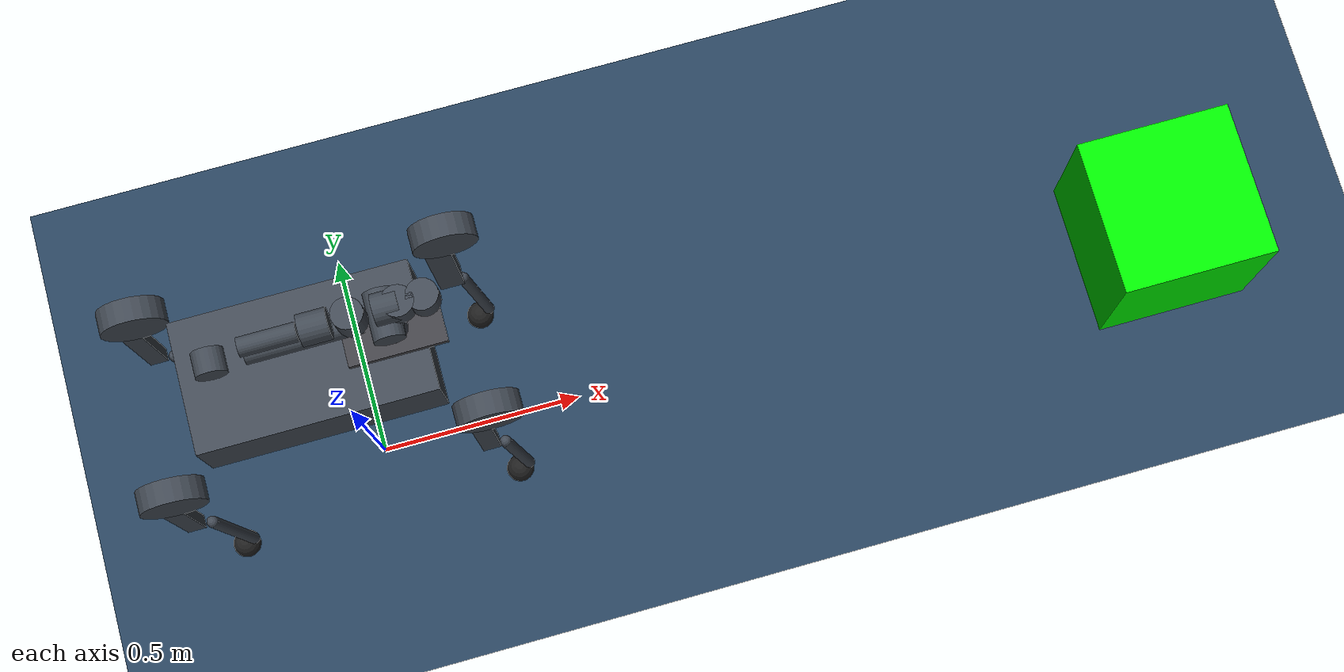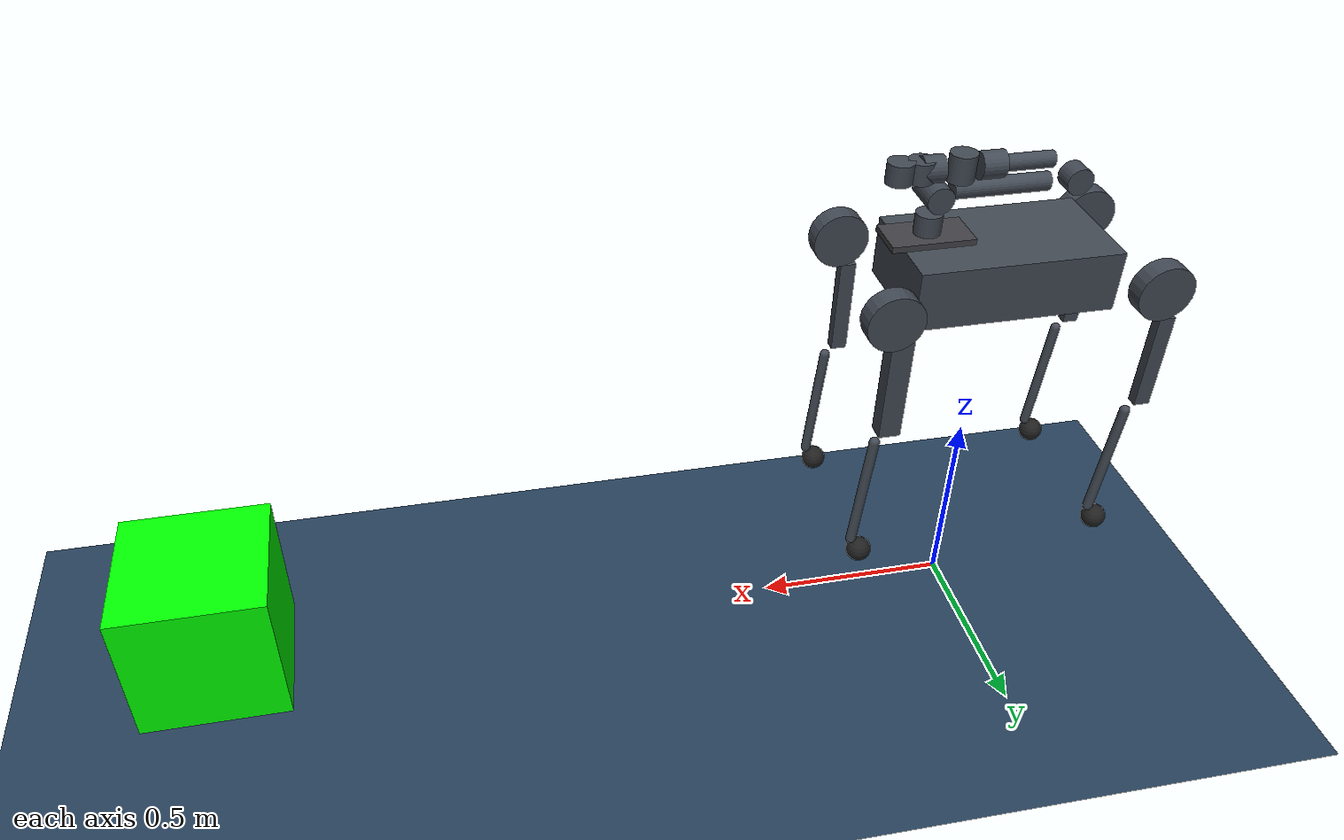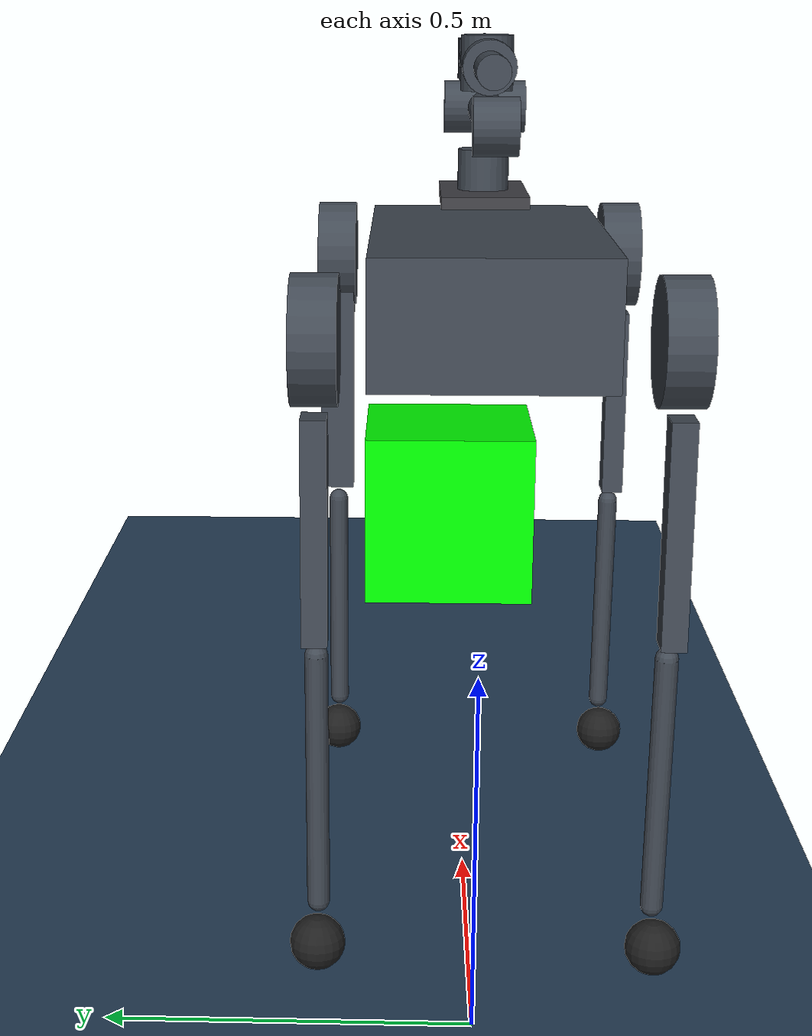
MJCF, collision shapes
<mujoco model="b2_z1_mppi_push_box_scene">
  <!-- The simulator directly includes the rollout model so robot/box
       dynamics, joint order, sensors and keyframes cannot drift apart. -->
  <include file="b2_z1_base_push_box.xml"/>

  <statistic center="1 0 0.6" extent="2.8"/>

  <visual>
    <headlight diffuse="0.6 0.6 0.6" ambient="0.3 0.3 0.3" specular="0.1 0.1 0.1"/>
    <rgba haze="0.15 0.25 0.35 1"/>
    <global azimuth="-125" elevation="-20"/>
  </visual>

  <asset>
    <texture type="skybox" builtin="gradient" rgb1="0.3 0.5 0.7" rgb2="0 0 0"
             width="512" height="3072"/>
  </asset>

  <worldbody>
    <light pos="0 0 2" dir="0 0 -1" directional="true"/>
  </worldbody>
</mujoco>

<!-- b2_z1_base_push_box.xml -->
<mujoco model="b2_z1_4dof_push_box">
  <!-- Self-contained B2-Z1 rollout model for the manipulator push-box task.
       scene_push_box.xml includes this file so both models share identical
       dynamics, joint ordering and keyframes. -->
  <compiler angle="radian" meshdir="assets" autolimits="true" inertiafromgeom="false"/>
  <option timestep="0.01" integrator="implicitfast" cone="elliptic" impratio="100"/>

  <!--
    MPPI action order:
      FR leg, FL leg, RR leg, RL leg, Z1 joint1..joint4.
    Every actuator interprets ctrl as a desired joint angle in radians.
  -->
  <default>
    <joint damping="1" armature="0.1"/>
    <geom friction="0.8 0.02 0.01" margin="0.001" condim="4"/>
    <default class="visual">
      <geom type="mesh" contype="0" conaffinity="0" group="2" density="0"/>
    </default>
    <default class="collision">
      <geom group="3" rgba="0.25 0.28 0.32 0.35"/>
    </default>
    <default class="foot">
      <geom type="sphere" size="0.032" margin="0.003" priority="1" solref="0.01 1"
            solimp="0.9 0.95 0.001" condim="6" friction="0.8 0.02 0.01"
            rgba="0.12 0.12 0.12 1"/>
      <site type="sphere" size="0.032" rgba="0.2 0.8 0.2 0.25" group="4"/>
    </default>
  </default>

  <asset>
    <material name="b2_dark" rgba="0.12 0.12 0.13 1"/>
    <material name="b2_body" rgba="0.62 0.65 0.68 1"/>
    <material name="z1_body" rgba="0.72 0.48 0.18 1"/>
    <texture type="2d" name="push_box_ground_texture" builtin="checker" mark="edge"
             rgb1="0.2 0.3 0.4" rgb2="0.1 0.2 0.3" markrgb="0.8 0.8 0.8"
             width="300" height="300"/>
    <material name="push_box_ground" texture="push_box_ground_texture"
              texuniform="true" texrepeat="5 5" reflectance="0.2"/>
    <material name="push_box_material" rgba="0 1 0 1"/>

    <mesh name="b2_base" file="b2/base_link.obj"/>
    <mesh name="FR_hip_mesh" file="b2/FR_hip.obj"/>
    <mesh name="FR_thigh_mesh" file="b2/FR_thigh.obj"/>
    <mesh name="FR_thigh_protect_mesh" file="b2/FR_thigh_protect.obj"/>
    <mesh name="FR_calf_mesh" file="b2/FR_calf.obj"/>
    <mesh name="FR_foot_mesh" file="b2/FR_foot.obj"/>
    <mesh name="FL_hip_mesh" file="b2/FL_hip.obj"/>
    <mesh name="FL_thigh_mesh" file="b2/FL_thigh.obj"/>
    <mesh name="FL_thigh_protect_mesh" file="b2/FL_thigh_protect.obj"/>
    <mesh name="FL_calf_mesh" file="b2/FL_calf.obj"/>
    <mesh name="FL_foot_mesh" file="b2/FL_foot.obj"/>
    <mesh name="RR_hip_mesh" file="b2/RR_hip.obj"/>
    <mesh name="RR_thigh_mesh" file="b2/RR_thigh.obj"/>
    <mesh name="RR_thigh_protect_mesh" file="b2/RR_thigh_protect.obj"/>
    <mesh name="RR_calf_mesh" file="b2/RR_calf.obj"/>
    <mesh name="RR_foot_mesh" file="b2/RR_foot.obj"/>
    <mesh name="RL_hip_mesh" file="b2/RL_hip.obj"/>
    <mesh name="RL_thigh_mesh" file="b2/RL_thigh.obj"/>
    <mesh name="RL_thigh_protect_mesh" file="b2/RL_thigh_protect.obj"/>
    <mesh name="RL_calf_mesh" file="b2/RL_calf.obj"/>
    <mesh name="RL_foot_mesh" file="b2/RL_foot.obj"/>

    <mesh name="z1_link00_mesh" file="z1/z1_Link00.STL"/>
    <mesh name="z1_link01_mesh" file="z1/z1_Link01.STL"/>
    <mesh name="z1_link02_mesh" file="z1/z1_Link02.STL"/>
    <mesh name="z1_link03_mesh" file="z1/z1_Link03.STL"/>
    <mesh name="z1_link04_mesh" file="z1/z1_Link04.STL"/>
    <mesh name="z1_link05_mesh" file="z1/z1_Link05.STL"/>
    <mesh name="z1_link06_mesh" file="z1/z1_Link06.STL"/>
    <mesh name="z1_gripper_stator_mesh" file="z1/z1_GripperStator.STL"/>
    <mesh name="z1_gripper_mover_mesh" file="z1/z1_GripperMover.STL"/>
  </asset>

  <worldbody>
    <body name="base_link" pos="0 0 1.0">
      <!-- Valid principal inertia from Unitree's B2 MJCF. -->
      <inertial pos="0.0212868 0.0045819 0.0106169"
                quat="0.00178111 0.675412 -0.000262894 0.737438"
                mass="35.86" diaginertia="1.73786 1.66448 0.343734"/>
      <freejoint name="floating_base_joint"/>
      <geom class="visual" mesh="b2_base" material="b2_body"/>
      <geom name="base_collision" class="collision" type="box" size="0.25 0.14 0.075"/>
      <site name="imu" pos="0 -0.02341 0.04927" size="0.008" rgba="0.2 0.4 1 1"/>

      <!-- Joint traversal order intentionally matches the MPPI action order. -->
      <body name="FR_hip" pos="0.3285 -0.072 0">
        <inertial pos="-0.00844158 0.0100194 0.000239503"
                  quat="0.476608 0.477229 0.518954 0.525151"
                  mass="2.9464" diaginertia="0.00485575 0.00370656 0.00277186"/>
        <joint name="FR_hip_joint" axis="1 0 0" range="-0.87 0.87"/>
        <geom class="visual" mesh="FR_hip_mesh" material="b2_body"/>
        <geom class="collision" type="cylinder" size="0.07 0.025" pos="0 -0.12 0" euler="1.5707963 0 0"/>
        <body name="FR_thigh" pos="0 -0.11973 0">
          <inertial pos="-0.00592206 0.0335174 -0.0545473"
                    quat="0.40566 -0.000894103 0.0855942 0.910007"
                    mass="4.8094" diaginertia="0.0640936 0.0634464 0.00699948"/>
          <joint name="FR_thigh_joint" axis="0 1 0" range="-0.94 4.69"/>
          <geom class="visual" mesh="FR_thigh_mesh" material="b2_body"/>
          <geom class="visual" mesh="FR_thigh_protect_mesh" material="b2_body"/>
          <geom class="collision" type="box" size="0.125 0.014 0.02" pos="-0.03 0 -0.2" euler="0 1.57 0"/>
          <body name="FR_calf" pos="0 0.000086986 -0.35">
            <inertial pos="0.00792095 0 -0.180895"
                      quat="0.70709 -0.00488772 -0.00488772 0.70709"
                      mass="0.53" diaginertia="0.0169205 0.0167822 0.000404298"/>
            <joint name="FR_calf_joint" axis="0 1 0" range="-2.82 -0.43"/>
            <geom class="visual" mesh="FR_calf_mesh" material="b2_body"/>
            <geom class="visual" mesh="FR_foot_mesh" material="b2_dark"/>
            <geom class="collision" type="capsule" size="0.013" fromto="0 0 0 0.025 0 -0.31"/>
            <geom name="FR_foot" class="foot" pos="0 0.000086986 -0.35"/>
            <site name="FR" class="foot" pos="0 0.000086986 -0.35"/>
          </body>
        </body>
      </body>

      <body name="FL_hip" pos="0.3285 0.072 0">
        <inertial pos="-0.00348459 -0.00896704 0"
                  quat="0.511347 0.510967 0.488412 0.488763"
                  mass="2.9464" diaginertia="0.00502561 0.00397571 0.00346037"/>
        <joint name="FL_hip_joint" axis="1 0 0" range="-0.87 0.87"/>
        <geom class="visual" mesh="FL_hip_mesh" material="b2_body"/>
        <geom class="collision" type="cylinder" size="0.07 0.025" pos="0 0.12 0" euler="1.5707963 0 0"/>
        <body name="FL_thigh" pos="0 0.11973 0">
          <inertial pos="-0.00592206 -0.0335174 -0.0545473"
                    quat="0.910035 0.0855949 -0.000888135 0.405597"
                    mass="4.8094" diaginertia="0.0640934 0.0634463 0.00699942"/>
          <joint name="FL_thigh_joint" axis="0 1 0" range="-0.94 4.69"/>
          <geom class="visual" mesh="FL_thigh_mesh" material="b2_body"/>
          <geom class="visual" mesh="FL_thigh_protect_mesh" material="b2_body"/>
          <geom class="collision" type="box" size="0.16 0.02225 0.027" pos="-0.025 0 -0.16" euler="0 1.57 0"/>
          <body name="FL_calf" pos="0 -0.000086984 -0.35">
            <inertial pos="0.00792095 0 -0.180895"
                      quat="0.70709 -0.00488772 -0.00488772 0.70709"
                      mass="0.53" diaginertia="0.0169205 0.0167822 0.000404298"/>
            <joint name="FL_calf_joint" axis="0 1 0" range="-2.82 -0.43"/>
            <geom class="visual" mesh="FL_calf_mesh" material="b2_body"/>
            <geom class="visual" mesh="FL_foot_mesh" material="b2_dark"/>
            <geom class="collision" type="capsule" size="0.013" fromto="0 0 0 0.025 0 -0.31"/>
            <geom name="FL_foot" class="foot" pos="0 0.000086986 -0.35"/>
            <site name="FL" class="foot" pos="0 0.000086986 -0.35"/>
          </body>
        </body>
      </body>

      <body name="RR_hip" pos="-0.3285 -0.072 0">
        <inertial pos="0.00348459 0.00896704 0"
                  quat="0.510967 0.511347 0.488763 0.488412"
                  mass="2.9464" diaginertia="0.00502561 0.00397571 0.00346037"/>
        <joint name="RR_hip_joint" axis="1 0 0" range="-0.87 0.87"/>
        <geom class="visual" mesh="RR_hip_mesh" material="b2_body"/>
        <geom class="collision" type="cylinder" size="0.07 0.025" pos="0 -0.12 0" euler="1.5707963 0 0"/>
        <body name="RR_thigh" pos="0 -0.11973 0">
          <inertial pos="-0.00592206 0.0335174 -0.0545473"
                    quat="0.405597 -0.000888135 0.0855949 0.910035"
                    mass="4.8094" diaginertia="0.0640934 0.0634463 0.00699942"/>
          <joint name="RR_thigh_joint" axis="0 1 0" range="-0.94 4.69"/>
          <geom class="visual" mesh="RR_thigh_mesh" material="b2_body"/>
          <geom class="visual" mesh="RR_thigh_protect_mesh" material="b2_body"/>
          <geom class="collision" type="box" size="0.125 0.014 0.02" pos="-0.03 0 -0.2" euler="0 1.57 0"/>
          <body name="RR_calf" pos="0 0.000086986 -0.35">
            <inertial pos="0.00792095 0 -0.180895"
                      quat="0.70709 -0.00488772 -0.00488772 0.70709"
                      mass="0.53" diaginertia="0.0169205 0.0167822 0.000404298"/>
            <joint name="RR_calf_joint" axis="0 1 0" range="-2.82 -0.43"/>
            <geom class="visual" mesh="RR_calf_mesh" material="b2_body"/>
            <geom class="visual" mesh="RR_foot_mesh" material="b2_dark"/>
            <geom class="collision" type="capsule" size="0.013" fromto="0 0 0 0.025 0 -0.31"/>
            <geom name="RR_foot" class="foot" pos="0 0.000086986 -0.35"/>
            <site name="RR" class="foot" pos="0 0.000086986 -0.35"/>
          </body>
        </body>
      </body>

      <body name="RL_hip" pos="-0.3285 0.072 0">
        <inertial pos="0.00844158 -0.0100194 0.000239503"
                  quat="0.477229 0.476608 0.525151 0.518954"
                  mass="2.9464" diaginertia="0.00485575 0.00370656 0.00277186"/>
        <joint name="RL_hip_joint" axis="1 0 0" range="-0.87 0.87"/>
        <geom class="visual" mesh="RL_hip_mesh" material="b2_body"/>
        <geom class="collision" type="cylinder" size="0.07 0.025" pos="0 0.12 0" euler="1.5707963 0 0"/>
        <body name="RL_thigh" pos="0 0.11973 0">
          <inertial pos="-0.00592206 -0.0335174 -0.0545473"
                    quat="0.910007 0.0855942 -0.000894103 0.40566"
                    mass="4.8094" diaginertia="0.0640936 0.0634464 0.00699948"/>
          <joint name="RL_thigh_joint" axis="0 1 0" range="-0.94 4.69"/>
          <geom class="visual" mesh="RL_thigh_mesh" material="b2_body"/>
          <geom class="visual" mesh="RL_thigh_protect_mesh" material="b2_body"/>
          <geom class="collision" type="box" size="0.125 0.014 0.02" pos="-0.03 0 -0.2" euler="0 1.57 0"/>
          <body name="RL_calf" pos="0 -0.000086984 -0.35">
            <inertial pos="0.00792095 0 -0.180895"
                      quat="0.70709 -0.00488772 -0.00488772 0.70709"
                      mass="0.53" diaginertia="0.0169205 0.0167822 0.000404298"/>
            <joint name="RL_calf_joint" axis="0 1 0" range="-2.82 -0.43"/>
            <geom class="visual" mesh="RL_calf_mesh" material="b2_body"/>
            <geom class="visual" mesh="RL_foot_mesh" material="b2_dark"/>
            <geom class="collision" type="capsule" size="0.013" fromto="0 0 0 0.025 0 -0.31"/>
            <geom name="RL_foot" class="foot" pos="0 0.000086986 -0.35"/>
            <site name="RL" class="foot" pos="0 0.000086986 -0.35"/>
          </body>
        </body>
      </body>

      <!-- Z1 mount from wb-mpc-locoman's integrated B2-Z1 URDF. -->
      <body name="arm_mount" pos="0.190 0 0.0952">
        <geom name="arm_mount_collision" type="box" size="0.1025 0.055 0.0075"
              mass="0.301" rgba="0.25 0.25 0.27 1"/>
        <body name="link00" pos="0 0 0.0075">
          <inertial pos="-0.00334984 -0.00013615 0.02495843" mass="0.47247481"
                    fullinertia="0.00037937 0.00041521 0.00053066 -0.00000035 -0.00001037 -0.00000099"/>
          <geom class="visual" mesh="z1_link00_mesh" material="z1_body"/>
          <geom class="collision" type="cylinder" size="0.0325 0.0255" pos="0 0 0.0255"/>
          <body name="link01" pos="0 0 0.0585">
            <inertial pos="0.00000247 -0.00025198 0.02317169" mass="0.67332551"
                      fullinertia="0.00128328 0.00071931 0.00083936 -0.00000006 -0.00000040 0.00000050"/>
            <joint name="joint1" axis="0 0 1" range="-2.617993878 2.617993878" damping="1" armature="0.01"/>
            <geom class="visual" mesh="z1_link01_mesh" material="z1_body"/>
            <body name="link02" pos="0 0 0.045">
              <inertial pos="-0.11012601 0.00240029 0.00158266" mass="1.19132258"
                        fullinertia="0.00102138 0.02429457 0.02466114 0.00062358 0.00000513 -0.00000210"/>
              <joint name="joint2" axis="0 1 0" range="0 2.967059728" damping="2" armature="0.01"/>
              <geom class="visual" mesh="z1_link02_mesh" material="z1_body"/>
              <geom class="collision" type="cylinder" size="0.0325 0.051" euler="1.5707963 0 0"/>
              <geom class="collision" type="cylinder" size="0.0225 0.1175" pos="-0.1625 0 0" euler="0 1.5707963 0"/>
              <geom class="collision" type="cylinder" size="0.0325 0.0255" pos="-0.35 0 0" euler="1.5707963 0 0"/>
              <body name="link03" pos="-0.35 0 0">
                <inertial pos="0.10609208 -0.00541815 0.03476383" mass="0.83940874"
                          fullinertia="0.00108061 0.00954238 0.00886621 -0.00008669 -0.00208102 -0.00001332"/>
                <joint name="joint3" axis="0 1 0" range="-2.879793266 0" damping="1" armature="0.01"/>
                <geom class="visual" mesh="z1_link03_mesh" material="z1_body"/>
                <geom class="collision" type="cylinder" size="0.02 0.058" pos="0.128 0 0.055" euler="0 1.5707963 0"/>
                <geom class="collision" type="cylinder" size="0.0325 0.0295" pos="0.2205 0 0.055" euler="0 1.5707963 1.5707963"/>
                <body name="link04" pos="0.218 0 0.057">
                  <inertial pos="0.04366681 0.00364738 -0.00170192" mass="0.56404563"
                            fullinertia="0.00031576 0.00092996 0.00097912 0.00008130 0.00004091 -0.00000596"/>
                  <joint name="joint4" axis="0 1 0" range="-1.518436449 1.518436449" damping="1" armature="0.01"/>
                  <geom class="visual" mesh="z1_link04_mesh" material="z1_body"/>
                  <geom class="collision" type="cylinder" size="0.0325 0.0335" pos="0.072 0 0"/>

                  <!-- joint5, joint6 and gripper are fixed at zero for the 4-DoF MVP. -->
                  <body name="link05" pos="0.07 0 0">
                    <inertial pos="0.03121533 0 0.00646316" mass="0.38938492"
                              fullinertia="0.00017605 0.00055896 0.00053860 0.00000040 0.00005689 -0.00000013"/>
                    <geom class="visual" mesh="z1_link05_mesh" material="z1_body"/>
                    <body name="link06" pos="0.0492 0 0">
                      <inertial pos="0.02415690 -0.00017355 -0.00143876" mass="0.28875807"
                                fullinertia="0.00018328 0.00014750 0.00014680 0.00000122 0.00000054 0.00000008"/>
                      <geom class="visual" mesh="z1_link06_mesh" material="z1_body"/>
                      <geom class="collision" type="cylinder" size="0.0325 0.0255" pos="0.0255 0 0" euler="0 1.5707963 0"/>
                      <body name="gripper_stator" pos="0.051 0 0">
                        <inertial pos="0.04764427 -0.00035819 -0.00249162" mass="0.52603655"
                                  fullinertia="0.00038683 0.00068614 0.00066293 -0.00000359 0.00007662 0.00000209"/>
                        <geom class="visual" mesh="z1_gripper_stator_mesh" material="z1_body"/>
                        <geom class="collision" type="cylinder" size="0.0325 0.0255"/>
                        <body name="gripper_mover" pos="0.049 0 0">
                          <inertial pos="0.01320633 0.00476708 0.00380534" mass="0.27621302"
                                    fullinertia="0.00017716 0.00026787 0.00035728 0.00001683 -0.00001786 0.00000262"/>
                          <geom class="visual" mesh="z1_gripper_mover_mesh" material="z1_body"/>
                          <geom class="collision" type="cylinder" size="0.0325 0.0255"/>
                          <site name="gripper_center" pos="0.05 0 0" size="0.025" rgba="1 0.2 0.1 0.7" group="4"/>
                        </body>
                      </body>
                    </body>
                  </body>
                </body>
              </body>
            </body>
          </body>
        </body>
      </body>
    </body>

    <geom name="floor" type="plane" size="0 0 0.05" pos="0 0 0"
          material="push_box_ground" friction="0.8 0.02 0.01" condim="6"/>

    <!-- Original Go1 push-box dimensions and dynamics. The z position is
         adjusted from 0.1815 to 0.19 because this floor is located at z=0. -->
    <body name="box" pos="2 0 0.19">
      <freejoint name="box_joint"/>
      <inertial pos="0 0 0" mass="3.70"
                diaginertia="0.0749 0.0749 0.0849"/>
      <geom name="box_geom" type="box" size="0.19 0.19 0.19"
            material="push_box_material"
            friction="0.0 0.005 0.0001" condim="6"/>
      <!-- Nominal contact point on the face approached from -x. -->
      <site name="box_push_face" pos="-0.19 0 0" size="0.015"
            rgba="1 0 0 0.65" group="4"/>
    </body>
  </worldbody>

  <contact>
    <exclude body1="link00" body2="link01"/>
    <exclude body1="link01" body2="link02"/>
    <exclude body1="link02" body2="link03"/>
    <exclude body1="link03" body2="link04"/>
    <exclude body1="link04" body2="link05"/>
    <exclude body1="link05" body2="link06"/>
    <exclude body1="link06" body2="gripper_stator"/>
    <exclude body1="gripper_stator" body2="gripper_mover"/>
  </contact>

  <actuator>
    <!-- B2 gains are seeded from b2_description/config/robot_control.yaml. -->
    <general name="FR_hip" joint="FR_hip_joint" ctrlrange="-0.87 0.87" forcerange="-200 200"
             biastype="affine" gainprm="100" biasprm="0 -100 -5"/>
    <general name="FR_thigh" joint="FR_thigh_joint" ctrlrange="-0.94 4.69" forcerange="-200 200"
             biastype="affine" gainprm="300" biasprm="0 -300 -8"/>
    <general name="FR_calf" joint="FR_calf_joint" ctrlrange="-2.82 -0.43" forcerange="-320 320"
             biastype="affine" gainprm="300" biasprm="0 -300 -8"/>
    <general name="FL_hip" joint="FL_hip_joint" ctrlrange="-0.87 0.87" forcerange="-200 200"
             biastype="affine" gainprm="100" biasprm="0 -100 -5"/>
    <general name="FL_thigh" joint="FL_thigh_joint" ctrlrange="-0.94 4.69" forcerange="-200 200"
             biastype="affine" gainprm="300" biasprm="0 -300 -8"/>
    <general name="FL_calf" joint="FL_calf_joint" ctrlrange="-2.82 -0.43" forcerange="-320 320"
             biastype="affine" gainprm="300" biasprm="0 -300 -8"/>
    <general name="RR_hip" joint="RR_hip_joint" ctrlrange="-0.87 0.87" forcerange="-200 200"
             biastype="affine" gainprm="100" biasprm="0 -100 -5"/>
    <general name="RR_thigh" joint="RR_thigh_joint" ctrlrange="-0.94 4.69" forcerange="-200 200"
             biastype="affine" gainprm="300" biasprm="0 -300 -8"/>
    <general name="RR_calf" joint="RR_calf_joint" ctrlrange="-2.82 -0.43" forcerange="-320 320"
             biastype="affine" gainprm="300" biasprm="0 -300 -8"/>
    <general name="RL_hip" joint="RL_hip_joint" ctrlrange="-0.87 0.87" forcerange="-200 200"
             biastype="affine" gainprm="100" biasprm="0 -100 -5"/>
    <general name="RL_thigh" joint="RL_thigh_joint" ctrlrange="-0.94 4.69" forcerange="-200 200"
             biastype="affine" gainprm="300" biasprm="0 -300 -8"/>
    <general name="RL_calf" joint="RL_calf_joint" ctrlrange="-2.82 -0.43" forcerange="-320 320"
             biastype="affine" gainprm="300" biasprm="0 -300 -8"/>

    <general name="joint1" joint="joint1" ctrlrange="-2.617993878 2.617993878" forcerange="-30 30"
             biastype="affine" gainprm="300" biasprm="0 -300 -5"/>
    <general name="joint2" joint="joint2" ctrlrange="0 2.967059728" forcerange="-60 60"
             biastype="affine" gainprm="300" biasprm="0 -300 -5"/>
    <general name="joint3" joint="joint3" ctrlrange="-2.879793266 0" forcerange="-30 30"
             biastype="affine" gainprm="300" biasprm="0 -300 -5"/>
    <general name="joint4" joint="joint4" ctrlrange="-1.518436449 1.518436449" forcerange="-30 30"
             biastype="affine" gainprm="300" biasprm="0 -300 -5"/>
  </actuator>

  <sensor>
    <framepos name="base_pos" objtype="xbody" objname="base_link"/>
    <framequat name="base_quat" objtype="xbody" objname="base_link"/>
    <gyro name="base_gyro" site="imu"/>
    <accelerometer name="base_acc" site="imu"/>
    <!-- Four arm FK points used by rollout clearance/collision costs. -->
    <framepos name="arm_shoulder_pos" objtype="xbody" objname="link02"/>
    <framepos name="arm_elbow_pos" objtype="xbody" objname="link03"/>
    <framepos name="arm_wrist_pos" objtype="xbody" objname="link04"/>
    <framepos name="ee_pos" objtype="site" objname="gripper_center"/>
    <framequat name="ee_quat" objtype="site" objname="gripper_center"/>
    <touch name="FR_touch" site="FR"/>
    <touch name="FL_touch" site="FL"/>
    <touch name="RR_touch" site="RR"/>
    <touch name="RL_touch" site="RL"/>
    <!-- Box observations for the push task. -->
    <framepos name="box_pos" objtype="xbody" objname="box"/>
    <framequat name="box_quat" objtype="xbody" objname="box"/>
    <framelinvel name="box_linvel" objtype="xbody" objname="box"/>
    <frameangvel name="box_angvel" objtype="xbody" objname="box"/>
    <framepos name="box_push_face_pos" objtype="site" objname="box_push_face"/>
  </sensor>

  <keyframe>
    <!-- B2-scaled analogue of Go1's sit keyframe (1.34, -2.83). -->
    <key name="sit"
         qpos="0 0 0.1502 1 0 0 0
               0 1.28 -2.8  0 1.28 -2.8
               0 1.28 -2.8  0 1.28 -2.8
               0 1.0 -0.6 0
               2 0 0.19 1 0 0 0"
         ctrl="0 1.28 -2.8  0 1.28 -2.8
               0 1.28 -2.8  0 1.28 -2.8
               0 1.0 -0.6 0"/>
    <key name="stand"
         qpos="0 0 0.543542 1 0 0 0
               0 0.7 -1.5  0 0.7 -1.5
               0 0.7 -1.5  0 0.7 -1.5
               0 1.0 -0.6 0
               2 0 0.19 1 0 0 0"
         ctrl="0 0.7 -1.5  0 0.7 -1.5
               0 0.7 -1.5  0 0.7 -1.5
               0 1.0 -0.6 0"/>
  </keyframe>
</mujoco>
